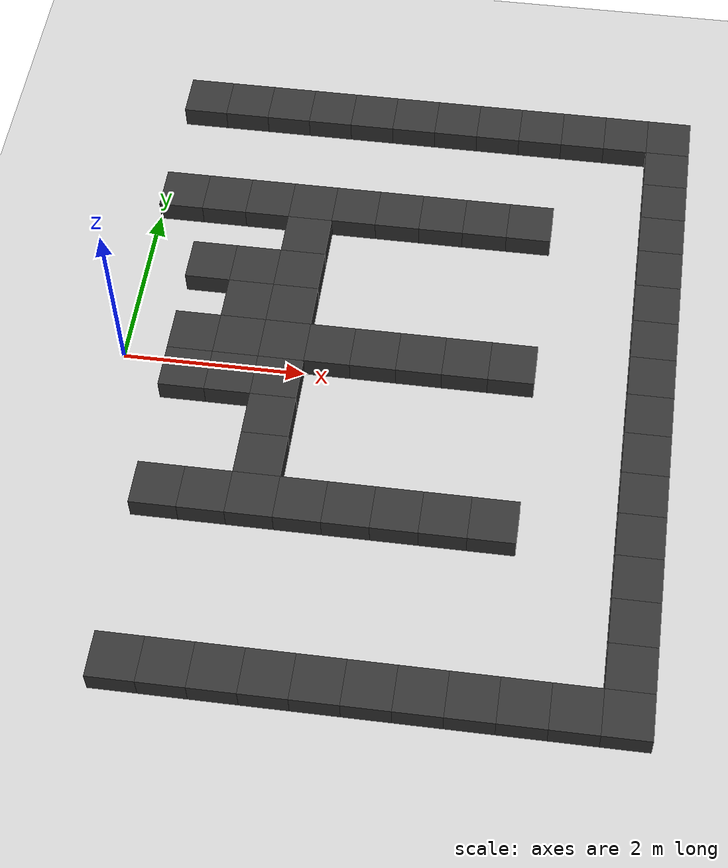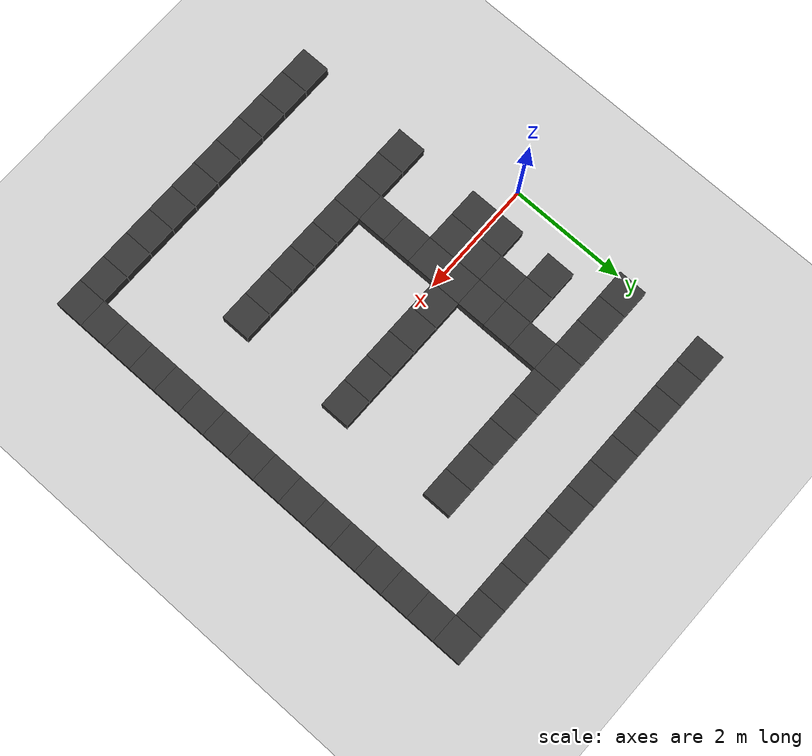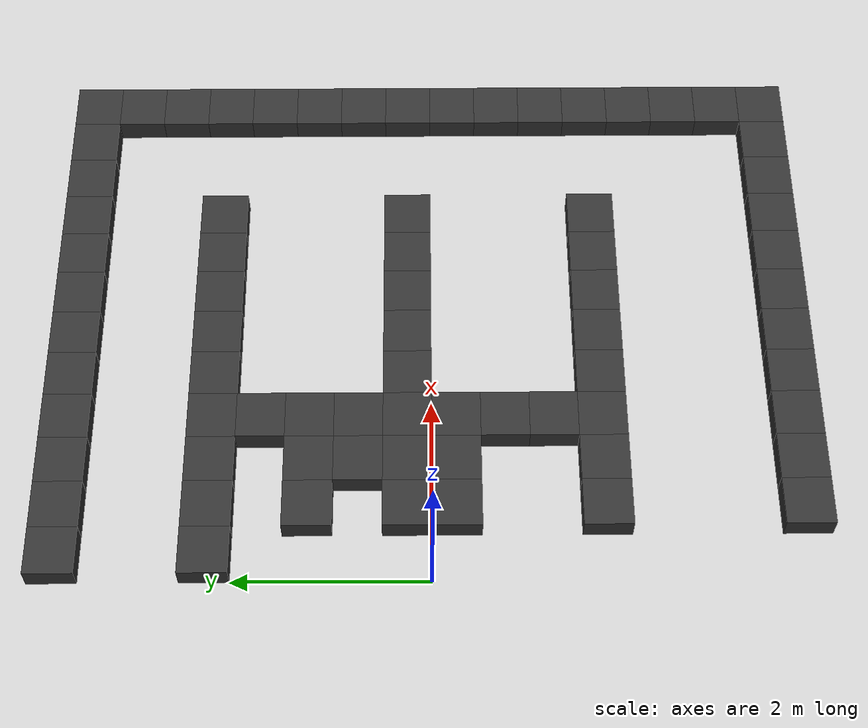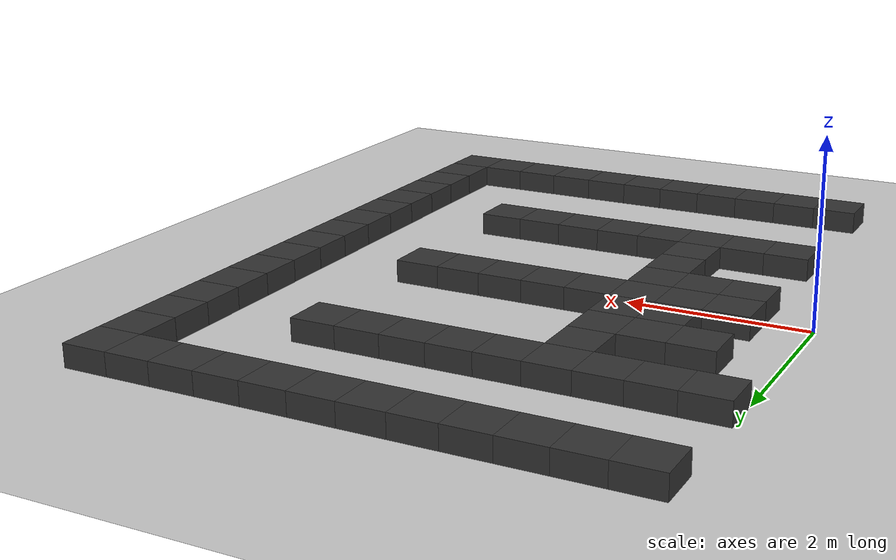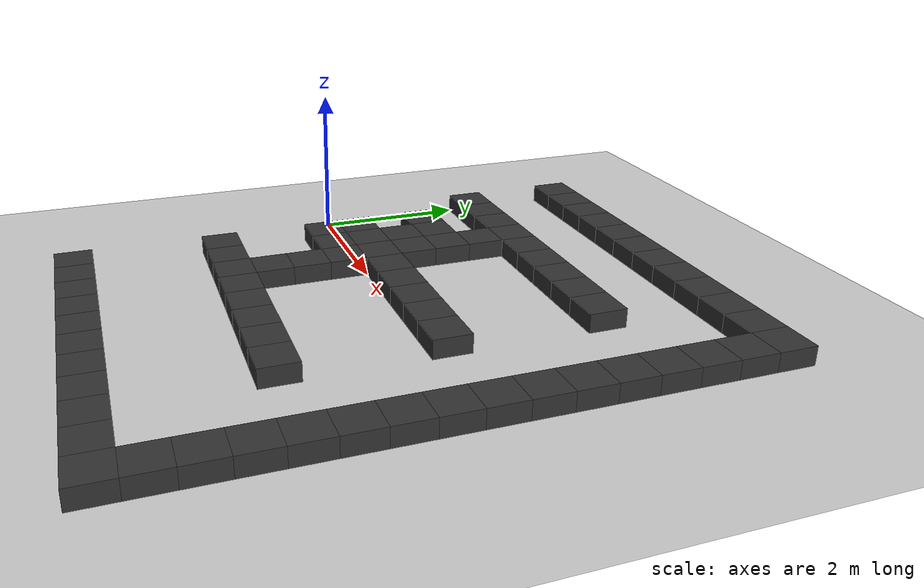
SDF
<sdf version="1.7">
 <world name="default">
  <model name="ground">
   <static>true</static>
   <link name="link">
    <collision name="col">
     <geometry><plane><normal>0 0 1</normal><size>200 200</size></plane></geometry>
    </collision>
    <visual name="vis">
     <geometry><plane><normal>0 0 1</normal><size>200 200</size></plane></geometry>
     <material>
      <ambient>0.25 0.25 0.25 1</ambient>
      <diffuse>0.80 0.80 0.80 1</diffuse>
      <specular>0.05 0.05 0.05 1</specular>
     </material>
    </visual>
   </link>
  </model>
  <model name="w_0_13">
   <static>true</static>
   <pose>0.750 -3.750 0.125 0 0 0</pose>
   <link name="link">
    <collision name="col"><geometry><box><size>0.500 0.500 0.250</size></box></geometry></collision>
    <visual name="vis">
     <geometry><box><size>0.500 0.500 0.250</size></box></geometry>
     <material><ambient>0.2 0.2 0.2 1.0</ambient></material>
    </visual>
   </link>
  </model>
  <model name="w_0_14">
   <static>true</static>
   <pose>1.250 -3.750 0.125 0 0 0</pose>
   <link name="link">
    <collision name="col"><geometry><box><size>0.500 0.500 0.250</size></box></geometry></collision>
    <visual name="vis">
     <geometry><box><size>0.500 0.500 0.250</size></box></geometry>
     <material><ambient>0.2 0.2 0.2 1.0</ambient></material>
    </visual>
   </link>
  </model>
  <model name="w_0_15">
   <static>true</static>
   <pose>1.750 -3.750 0.125 0 0 0</pose>
   <link name="link">
    <collision name="col"><geometry><box><size>0.500 0.500 0.250</size></box></geometry></collision>
    <visual name="vis">
     <geometry><box><size>0.500 0.500 0.250</size></box></geometry>
     <material><ambient>0.2 0.2 0.2 1.0</ambient></material>
    </visual>
   </link>
  </model>
  <model name="w_0_16">
   <static>true</static>
   <pose>2.250 -3.750 0.125 0 0 0</pose>
   <link name="link">
    <collision name="col"><geometry><box><size>0.500 0.500 0.250</size></box></geometry></collision>
    <visual name="vis">
     <geometry><box><size>0.500 0.500 0.250</size></box></geometry>
     <material><ambient>0.2 0.2 0.2 1.0</ambient></material>
    </visual>
   </link>
  </model>
  <model name="w_0_17">
   <static>true</static>
   <pose>2.750 -3.750 0.125 0 0 0</pose>
   <link name="link">
    <collision name="col"><geometry><box><size>0.500 0.500 0.250</size></box></geometry></collision>
    <visual name="vis">
     <geometry><box><size>0.500 0.500 0.250</size></box></geometry>
     <material><ambient>0.2 0.2 0.2 1.0</ambient></material>
    </visual>
   </link>
  </model>
  <model name="w_0_18">
   <static>true</static>
   <pose>3.250 -3.750 0.125 0 0 0</pose>
   <link name="link">
    <collision name="col"><geometry><box><size>0.500 0.500 0.250</size></box></geometry></collision>
    <visual name="vis">
     <geometry><box><size>0.500 0.500 0.250</size></box></geometry>
     <material><ambient>0.2 0.2 0.2 1.0</ambient></material>
    </visual>
   </link>
  </model>
  <model name="w_0_19">
   <static>true</static>
   <pose>3.750 -3.750 0.125 0 0 0</pose>
   <link name="link">
    <collision name="col"><geometry><box><size>0.500 0.500 0.250</size></box></geometry></collision>
    <visual name="vis">
     <geometry><box><size>0.500 0.500 0.250</size></box></geometry>
     <material><ambient>0.2 0.2 0.2 1.0</ambient></material>
    </visual>
   </link>
  </model>
  <model name="w_0_20">
   <static>true</static>
   <pose>4.250 -3.750 0.125 0 0 0</pose>
   <link name="link">
    <collision name="col"><geometry><box><size>0.500 0.500 0.250</size></box></geometry></collision>
    <visual name="vis">
     <geometry><box><size>0.500 0.500 0.250</size></box></geometry>
     <material><ambient>0.2 0.2 0.2 1.0</ambient></material>
    </visual>
   </link>
  </model>
  <model name="w_0_21">
   <static>true</static>
   <pose>4.750 -3.750 0.125 0 0 0</pose>
   <link name="link">
    <collision name="col"><geometry><box><size>0.500 0.500 0.250</size></box></geometry></collision>
    <visual name="vis">
     <geometry><box><size>0.500 0.500 0.250</size></box></geometry>
     <material><ambient>0.2 0.2 0.2 1.0</ambient></material>
    </visual>
   </link>
  </model>
  <model name="w_0_22">
   <static>true</static>
   <pose>5.250 -3.750 0.125 0 0 0</pose>
   <link name="link">
    <collision name="col"><geometry><box><size>0.500 0.500 0.250</size></box></geometry></collision>
    <visual name="vis">
     <geometry><box><size>0.500 0.500 0.250</size></box></geometry>
     <material><ambient>0.2 0.2 0.2 1.0</ambient></material>
    </visual>
   </link>
  </model>
  <model name="w_0_23">
   <static>true</static>
   <pose>5.750 -3.750 0.125 0 0 0</pose>
   <link name="link">
    <collision name="col"><geometry><box><size>0.500 0.500 0.250</size></box></geometry></collision>
    <visual name="vis">
     <geometry><box><size>0.500 0.500 0.250</size></box></geometry>
     <material><ambient>0.2 0.2 0.2 1.0</ambient></material>
    </visual>
   </link>
  </model>
  <model name="w_1_23">
   <static>true</static>
   <pose>5.750 -3.250 0.125 0 0 0</pose>
   <link name="link">
    <collision name="col"><geometry><box><size>0.500 0.500 0.250</size></box></geometry></collision>
    <visual name="vis">
     <geometry><box><size>0.500 0.500 0.250</size></box></geometry>
     <material><ambient>0.2 0.2 0.2 1.0</ambient></material>
    </visual>
   </link>
  </model>
  <model name="w_2_23">
   <static>true</static>
   <pose>5.750 -2.750 0.125 0 0 0</pose>
   <link name="link">
    <collision name="col"><geometry><box><size>0.500 0.500 0.250</size></box></geometry></collision>
    <visual name="vis">
     <geometry><box><size>0.500 0.500 0.250</size></box></geometry>
     <material><ambient>0.2 0.2 0.2 1.0</ambient></material>
    </visual>
   </link>
  </model>
  <model name="w_3_23">
   <static>true</static>
   <pose>5.750 -2.250 0.125 0 0 0</pose>
   <link name="link">
    <collision name="col"><geometry><box><size>0.500 0.500 0.250</size></box></geometry></collision>
    <visual name="vis">
     <geometry><box><size>0.500 0.500 0.250</size></box></geometry>
     <material><ambient>0.2 0.2 0.2 1.0</ambient></material>
    </visual>
   </link>
  </model>
  <model name="w_4_13">
   <static>true</static>
   <pose>0.750 -1.750 0.125 0 0 0</pose>
   <link name="link">
    <collision name="col"><geometry><box><size>0.500 0.500 0.250</size></box></geometry></collision>
    <visual name="vis">
     <geometry><box><size>0.500 0.500 0.250</size></box></geometry>
     <material><ambient>0.2 0.2 0.2 1.0</ambient></material>
    </visual>
   </link>
  </model>
  <model name="w_4_14">
   <static>true</static>
   <pose>1.250 -1.750 0.125 0 0 0</pose>
   <link name="link">
    <collision name="col"><geometry><box><size>0.500 0.500 0.250</size></box></geometry></collision>
    <visual name="vis">
     <geometry><box><size>0.500 0.500 0.250</size></box></geometry>
     <material><ambient>0.2 0.2 0.2 1.0</ambient></material>
    </visual>
   </link>
  </model>
  <model name="w_4_15">
   <static>true</static>
   <pose>1.750 -1.750 0.125 0 0 0</pose>
   <link name="link">
    <collision name="col"><geometry><box><size>0.500 0.500 0.250</size></box></geometry></collision>
    <visual name="vis">
     <geometry><box><size>0.500 0.500 0.250</size></box></geometry>
     <material><ambient>0.2 0.2 0.2 1.0</ambient></material>
    </visual>
   </link>
  </model>
  <model name="w_4_16">
   <static>true</static>
   <pose>2.250 -1.750 0.125 0 0 0</pose>
   <link name="link">
    <collision name="col"><geometry><box><size>0.500 0.500 0.250</size></box></geometry></collision>
    <visual name="vis">
     <geometry><box><size>0.500 0.500 0.250</size></box></geometry>
     <material><ambient>0.2 0.2 0.2 1.0</ambient></material>
    </visual>
   </link>
  </model>
  <model name="w_4_17">
   <static>true</static>
   <pose>2.750 -1.750 0.125 0 0 0</pose>
   <link name="link">
    <collision name="col"><geometry><box><size>0.500 0.500 0.250</size></box></geometry></collision>
    <visual name="vis">
     <geometry><box><size>0.500 0.500 0.250</size></box></geometry>
     <material><ambient>0.2 0.2 0.2 1.0</ambient></material>
    </visual>
   </link>
  </model>
  <model name="w_4_18">
   <static>true</static>
   <pose>3.250 -1.750 0.125 0 0 0</pose>
   <link name="link">
    <collision name="col"><geometry><box><size>0.500 0.500 0.250</size></box></geometry></collision>
    <visual name="vis">
     <geometry><box><size>0.500 0.500 0.250</size></box></geometry>
     <material><ambient>0.2 0.2 0.2 1.0</ambient></material>
    </visual>
   </link>
  </model>
  <model name="w_4_19">
   <static>true</static>
   <pose>3.750 -1.750 0.125 0 0 0</pose>
   <link name="link">
    <collision name="col"><geometry><box><size>0.500 0.500 0.250</size></box></geometry></collision>
    <visual name="vis">
     <geometry><box><size>0.500 0.500 0.250</size></box></geometry>
     <material><ambient>0.2 0.2 0.2 1.0</ambient></material>
    </visual>
   </link>
  </model>
  <model name="w_4_20">
   <static>true</static>
   <pose>4.250 -1.750 0.125 0 0 0</pose>
   <link name="link">
    <collision name="col"><geometry><box><size>0.500 0.500 0.250</size></box></geometry></collision>
    <visual name="vis">
     <geometry><box><size>0.500 0.500 0.250</size></box></geometry>
     <material><ambient>0.2 0.2 0.2 1.0</ambient></material>
    </visual>
   </link>
  </model>
  <model name="w_4_23">
   <static>true</static>
   <pose>5.750 -1.750 0.125 0 0 0</pose>
   <link name="link">
    <collision name="col"><geometry><box><size>0.500 0.500 0.250</size></box></geometry></collision>
    <visual name="vis">
     <geometry><box><size>0.500 0.500 0.250</size></box></geometry>
     <material><ambient>0.2 0.2 0.2 1.0</ambient></material>
    </visual>
   </link>
  </model>
  <model name="w_5_15">
   <static>true</static>
   <pose>1.750 -1.250 0.125 0 0 0</pose>
   <link name="link">
    <collision name="col"><geometry><box><size>0.500 0.500 0.250</size></box></geometry></collision>
    <visual name="vis">
     <geometry><box><size>0.500 0.500 0.250</size></box></geometry>
     <material><ambient>0.2 0.2 0.2 1.0</ambient></material>
    </visual>
   </link>
  </model>
  <model name="w_5_23">
   <static>true</static>
   <pose>5.750 -1.250 0.125 0 0 0</pose>
   <link name="link">
    <collision name="col"><geometry><box><size>0.500 0.500 0.250</size></box></geometry></collision>
    <visual name="vis">
     <geometry><box><size>0.500 0.500 0.250</size></box></geometry>
     <material><ambient>0.2 0.2 0.2 1.0</ambient></material>
    </visual>
   </link>
  </model>
  <model name="w_6_15">
   <static>true</static>
   <pose>1.750 -0.750 0.125 0 0 0</pose>
   <link name="link">
    <collision name="col"><geometry><box><size>0.500 0.500 0.250</size></box></geometry></collision>
    <visual name="vis">
     <geometry><box><size>0.500 0.500 0.250</size></box></geometry>
     <material><ambient>0.2 0.2 0.2 1.0</ambient></material>
    </visual>
   </link>
  </model>
  <model name="w_6_23">
   <static>true</static>
   <pose>5.750 -0.750 0.125 0 0 0</pose>
   <link name="link">
    <collision name="col"><geometry><box><size>0.500 0.500 0.250</size></box></geometry></collision>
    <visual name="vis">
     <geometry><box><size>0.500 0.500 0.250</size></box></geometry>
     <material><ambient>0.2 0.2 0.2 1.0</ambient></material>
    </visual>
   </link>
  </model>
  <model name="w_7_13">
   <static>true</static>
   <pose>0.750 -0.250 0.125 0 0 0</pose>
   <link name="link">
    <collision name="col"><geometry><box><size>0.500 0.500 0.250</size></box></geometry></collision>
    <visual name="vis">
     <geometry><box><size>0.500 0.500 0.250</size></box></geometry>
     <material><ambient>0.2 0.2 0.2 1.0</ambient></material>
    </visual>
   </link>
  </model>
  <model name="w_7_14">
   <static>true</static>
   <pose>1.250 -0.250 0.125 0 0 0</pose>
   <link name="link">
    <collision name="col"><geometry><box><size>0.500 0.500 0.250</size></box></geometry></collision>
    <visual name="vis">
     <geometry><box><size>0.500 0.500 0.250</size></box></geometry>
     <material><ambient>0.2 0.2 0.2 1.0</ambient></material>
    </visual>
   </link>
  </model>
  <model name="w_7_15">
   <static>true</static>
   <pose>1.750 -0.250 0.125 0 0 0</pose>
   <link name="link">
    <collision name="col"><geometry><box><size>0.500 0.500 0.250</size></box></geometry></collision>
    <visual name="vis">
     <geometry><box><size>0.500 0.500 0.250</size></box></geometry>
     <material><ambient>0.2 0.2 0.2 1.0</ambient></material>
    </visual>
   </link>
  </model>
  <model name="w_7_23">
   <static>true</static>
   <pose>5.750 -0.250 0.125 0 0 0</pose>
   <link name="link">
    <collision name="col"><geometry><box><size>0.500 0.500 0.250</size></box></geometry></collision>
    <visual name="vis">
     <geometry><box><size>0.500 0.500 0.250</size></box></geometry>
     <material><ambient>0.2 0.2 0.2 1.0</ambient></material>
    </visual>
   </link>
  </model>
  <model name="w_8_13">
   <static>true</static>
   <pose>0.750 0.250 0.125 0 0 0</pose>
   <link name="link">
    <collision name="col"><geometry><box><size>0.500 0.500 0.250</size></box></geometry></collision>
    <visual name="vis">
     <geometry><box><size>0.500 0.500 0.250</size></box></geometry>
     <material><ambient>0.2 0.2 0.2 1.0</ambient></material>
    </visual>
   </link>
  </model>
  <model name="w_8_14">
   <static>true</static>
   <pose>1.250 0.250 0.125 0 0 0</pose>
   <link name="link">
    <collision name="col"><geometry><box><size>0.500 0.500 0.250</size></box></geometry></collision>
    <visual name="vis">
     <geometry><box><size>0.500 0.500 0.250</size></box></geometry>
     <material><ambient>0.2 0.2 0.2 1.0</ambient></material>
    </visual>
   </link>
  </model>
  <model name="w_8_15">
   <static>true</static>
   <pose>1.750 0.250 0.125 0 0 0</pose>
   <link name="link">
    <collision name="col"><geometry><box><size>0.500 0.500 0.250</size></box></geometry></collision>
    <visual name="vis">
     <geometry><box><size>0.500 0.500 0.250</size></box></geometry>
     <material><ambient>0.2 0.2 0.2 1.0</ambient></material>
    </visual>
   </link>
  </model>
  <model name="w_8_16">
   <static>true</static>
   <pose>2.250 0.250 0.125 0 0 0</pose>
   <link name="link">
    <collision name="col"><geometry><box><size>0.500 0.500 0.250</size></box></geometry></collision>
    <visual name="vis">
     <geometry><box><size>0.500 0.500 0.250</size></box></geometry>
     <material><ambient>0.2 0.2 0.2 1.0</ambient></material>
    </visual>
   </link>
  </model>
  <model name="w_8_17">
   <static>true</static>
   <pose>2.750 0.250 0.125 0 0 0</pose>
   <link name="link">
    <collision name="col"><geometry><box><size>0.500 0.500 0.250</size></box></geometry></collision>
    <visual name="vis">
     <geometry><box><size>0.500 0.500 0.250</size></box></geometry>
     <material><ambient>0.2 0.2 0.2 1.0</ambient></material>
    </visual>
   </link>
  </model>
  <model name="w_8_18">
   <static>true</static>
   <pose>3.250 0.250 0.125 0 0 0</pose>
   <link name="link">
    <collision name="col"><geometry><box><size>0.500 0.500 0.250</size></box></geometry></collision>
    <visual name="vis">
     <geometry><box><size>0.500 0.500 0.250</size></box></geometry>
     <material><ambient>0.2 0.2 0.2 1.0</ambient></material>
    </visual>
   </link>
  </model>
  <model name="w_8_19">
   <static>true</static>
   <pose>3.750 0.250 0.125 0 0 0</pose>
   <link name="link">
    <collision name="col"><geometry><box><size>0.500 0.500 0.250</size></box></geometry></collision>
    <visual name="vis">
     <geometry><box><size>0.500 0.500 0.250</size></box></geometry>
     <material><ambient>0.2 0.2 0.2 1.0</ambient></material>
    </visual>
   </link>
  </model>
  <model name="w_8_20">
   <static>true</static>
   <pose>4.250 0.250 0.125 0 0 0</pose>
   <link name="link">
    <collision name="col"><geometry><box><size>0.500 0.500 0.250</size></box></geometry></collision>
    <visual name="vis">
     <geometry><box><size>0.500 0.500 0.250</size></box></geometry>
     <material><ambient>0.2 0.2 0.2 1.0</ambient></material>
    </visual>
   </link>
  </model>
  <model name="w_8_23">
   <static>true</static>
   <pose>5.750 0.250 0.125 0 0 0</pose>
   <link name="link">
    <collision name="col"><geometry><box><size>0.500 0.500 0.250</size></box></geometry></collision>
    <visual name="vis">
     <geometry><box><size>0.500 0.500 0.250</size></box></geometry>
     <material><ambient>0.2 0.2 0.2 1.0</ambient></material>
    </visual>
   </link>
  </model>
  <model name="w_9_14">
   <static>true</static>
   <pose>1.250 0.750 0.125 0 0 0</pose>
   <link name="link">
    <collision name="col"><geometry><box><size>0.500 0.500 0.250</size></box></geometry></collision>
    <visual name="vis">
     <geometry><box><size>0.500 0.500 0.250</size></box></geometry>
     <material><ambient>0.2 0.2 0.2 1.0</ambient></material>
    </visual>
   </link>
  </model>
  <model name="w_9_15">
   <static>true</static>
   <pose>1.750 0.750 0.125 0 0 0</pose>
   <link name="link">
    <collision name="col"><geometry><box><size>0.500 0.500 0.250</size></box></geometry></collision>
    <visual name="vis">
     <geometry><box><size>0.500 0.500 0.250</size></box></geometry>
     <material><ambient>0.2 0.2 0.2 1.0</ambient></material>
    </visual>
   </link>
  </model>
  <model name="w_9_23">
   <static>true</static>
   <pose>5.750 0.750 0.125 0 0 0</pose>
   <link name="link">
    <collision name="col"><geometry><box><size>0.500 0.500 0.250</size></box></geometry></collision>
    <visual name="vis">
     <geometry><box><size>0.500 0.500 0.250</size></box></geometry>
     <material><ambient>0.2 0.2 0.2 1.0</ambient></material>
    </visual>
   </link>
  </model>
  <model name="w_10_13">
   <static>true</static>
   <pose>0.750 1.250 0.125 0 0 0</pose>
   <link name="link">
    <collision name="col"><geometry><box><size>0.500 0.500 0.250</size></box></geometry></collision>
    <visual name="vis">
     <geometry><box><size>0.500 0.500 0.250</size></box></geometry>
     <material><ambient>0.2 0.2 0.2 1.0</ambient></material>
    </visual>
   </link>
  </model>
  <model name="w_10_14">
   <static>true</static>
   <pose>1.250 1.250 0.125 0 0 0</pose>
   <link name="link">
    <collision name="col"><geometry><box><size>0.500 0.500 0.250</size></box></geometry></collision>
    <visual name="vis">
     <geometry><box><size>0.500 0.500 0.250</size></box></geometry>
     <material><ambient>0.2 0.2 0.2 1.0</ambient></material>
    </visual>
   </link>
  </model>
  <model name="w_10_15">
   <static>true</static>
   <pose>1.750 1.250 0.125 0 0 0</pose>
   <link name="link">
    <collision name="col"><geometry><box><size>0.500 0.500 0.250</size></box></geometry></collision>
    <visual name="vis">
     <geometry><box><size>0.500 0.500 0.250</size></box></geometry>
     <material><ambient>0.2 0.2 0.2 1.0</ambient></material>
    </visual>
   </link>
  </model>
  <model name="w_10_23">
   <static>true</static>
   <pose>5.750 1.250 0.125 0 0 0</pose>
   <link name="link">
    <collision name="col"><geometry><box><size>0.500 0.500 0.250</size></box></geometry></collision>
    <visual name="vis">
     <geometry><box><size>0.500 0.500 0.250</size></box></geometry>
     <material><ambient>0.2 0.2 0.2 1.0</ambient></material>
    </visual>
   </link>
  </model>
  <model name="w_11_15">
   <static>true</static>
   <pose>1.750 1.750 0.125 0 0 0</pose>
   <link name="link">
    <collision name="col"><geometry><box><size>0.500 0.500 0.250</size></box></geometry></collision>
    <visual name="vis">
     <geometry><box><size>0.500 0.500 0.250</size></box></geometry>
     <material><ambient>0.2 0.2 0.2 1.0</ambient></material>
    </visual>
   </link>
  </model>
  <model name="w_11_23">
   <static>true</static>
   <pose>5.750 1.750 0.125 0 0 0</pose>
   <link name="link">
    <collision name="col"><geometry><box><size>0.500 0.500 0.250</size></box></geometry></collision>
    <visual name="vis">
     <geometry><box><size>0.500 0.500 0.250</size></box></geometry>
     <material><ambient>0.2 0.2 0.2 1.0</ambient></material>
    </visual>
   </link>
  </model>
  <model name="w_12_12">
   <static>true</static>
   <pose>0.250 2.250 0.125 0 0 0</pose>
   <link name="link">
    <collision name="col"><geometry><box><size>0.500 0.500 0.250</size></box></geometry></collision>
    <visual name="vis">
     <geometry><box><size>0.500 0.500 0.250</size></box></geometry>
     <material><ambient>0.2 0.2 0.2 1.0</ambient></material>
    </visual>
   </link>
  </model>
  <model name="w_12_13">
   <static>true</static>
   <pose>0.750 2.250 0.125 0 0 0</pose>
   <link name="link">
    <collision name="col"><geometry><box><size>0.500 0.500 0.250</size></box></geometry></collision>
    <visual name="vis">
     <geometry><box><size>0.500 0.500 0.250</size></box></geometry>
     <material><ambient>0.2 0.2 0.2 1.0</ambient></material>
    </visual>
   </link>
  </model>
  <model name="w_12_14">
   <static>true</static>
   <pose>1.250 2.250 0.125 0 0 0</pose>
   <link name="link">
    <collision name="col"><geometry><box><size>0.500 0.500 0.250</size></box></geometry></collision>
    <visual name="vis">
     <geometry><box><size>0.500 0.500 0.250</size></box></geometry>
     <material><ambient>0.2 0.2 0.2 1.0</ambient></material>
    </visual>
   </link>
  </model>
  <model name="w_12_15">
   <static>true</static>
   <pose>1.750 2.250 0.125 0 0 0</pose>
   <link name="link">
    <collision name="col"><geometry><box><size>0.500 0.500 0.250</size></box></geometry></collision>
    <visual name="vis">
     <geometry><box><size>0.500 0.500 0.250</size></box></geometry>
     <material><ambient>0.2 0.2 0.2 1.0</ambient></material>
    </visual>
   </link>
  </model>
  <model name="w_12_16">
   <static>true</static>
   <pose>2.250 2.250 0.125 0 0 0</pose>
   <link name="link">
    <collision name="col"><geometry><box><size>0.500 0.500 0.250</size></box></geometry></collision>
    <visual name="vis">
     <geometry><box><size>0.500 0.500 0.250</size></box></geometry>
     <material><ambient>0.2 0.2 0.2 1.0</ambient></material>
    </visual>
   </link>
  </model>
  <model name="w_12_17">
   <static>true</static>
   <pose>2.750 2.250 0.125 0 0 0</pose>
   <link name="link">
    <collision name="col"><geometry><box><size>0.500 0.500 0.250</size></box></geometry></collision>
    <visual name="vis">
     <geometry><box><size>0.500 0.500 0.250</size></box></geometry>
     <material><ambient>0.2 0.2 0.2 1.0</ambient></material>
    </visual>
   </link>
  </model>
  <model name="w_12_18">
   <static>true</static>
   <pose>3.250 2.250 0.125 0 0 0</pose>
   <link name="link">
    <collision name="col"><geometry><box><size>0.500 0.500 0.250</size></box></geometry></collision>
    <visual name="vis">
     <geometry><box><size>0.500 0.500 0.250</size></box></geometry>
     <material><ambient>0.2 0.2 0.2 1.0</ambient></material>
    </visual>
   </link>
  </model>
  <model name="w_12_19">
   <static>true</static>
   <pose>3.750 2.250 0.125 0 0 0</pose>
   <link name="link">
    <collision name="col"><geometry><box><size>0.500 0.500 0.250</size></box></geometry></collision>
    <visual name="vis">
     <geometry><box><size>0.500 0.500 0.250</size></box></geometry>
     <material><ambient>0.2 0.2 0.2 1.0</ambient></material>
    </visual>
   </link>
  </model>
  <model name="w_12_20">
   <static>true</static>
   <pose>4.250 2.250 0.125 0 0 0</pose>
   <link name="link">
    <collision name="col"><geometry><box><size>0.500 0.500 0.250</size></box></geometry></collision>
    <visual name="vis">
     <geometry><box><size>0.500 0.500 0.250</size></box></geometry>
     <material><ambient>0.2 0.2 0.2 1.0</ambient></material>
    </visual>
   </link>
  </model>
  <model name="w_12_23">
   <static>true</static>
   <pose>5.750 2.250 0.125 0 0 0</pose>
   <link name="link">
    <collision name="col"><geometry><box><size>0.500 0.500 0.250</size></box></geometry></collision>
    <visual name="vis">
     <geometry><box><size>0.500 0.500 0.250</size></box></geometry>
     <material><ambient>0.2 0.2 0.2 1.0</ambient></material>
    </visual>
   </link>
  </model>
  <model name="w_13_23">
   <static>true</static>
   <pose>5.750 2.750 0.125 0 0 0</pose>
   <link name="link">
    <collision name="col"><geometry><box><size>0.500 0.500 0.250</size></box></geometry></collision>
    <visual name="vis">
     <geometry><box><size>0.500 0.500 0.250</size></box></geometry>
     <material><ambient>0.2 0.2 0.2 1.0</ambient></material>
    </visual>
   </link>
  </model>
  <model name="w_14_23">
   <static>true</static>
   <pose>5.750 3.250 0.125 0 0 0</pose>
   <link name="link">
    <collision name="col"><geometry><box><size>0.500 0.500 0.250</size></box></geometry></collision>
    <visual name="vis">
     <geometry><box><size>0.500 0.500 0.250</size></box></geometry>
     <material><ambient>0.2 0.2 0.2 1.0</ambient></material>
    </visual>
   </link>
  </model>
  <model name="w_15_12">
   <static>true</static>
   <pose>0.250 3.750 0.125 0 0 0</pose>
   <link name="link">
    <collision name="col"><geometry><box><size>0.500 0.500 0.250</size></box></geometry></collision>
    <visual name="vis">
     <geometry><box><size>0.500 0.500 0.250</size></box></geometry>
     <material><ambient>0.2 0.2 0.2 1.0</ambient></material>
    </visual>
   </link>
  </model>
  <model name="w_15_13">
   <static>true</static>
   <pose>0.750 3.750 0.125 0 0 0</pose>
   <link name="link">
    <collision name="col"><geometry><box><size>0.500 0.500 0.250</size></box></geometry></collision>
    <visual name="vis">
     <geometry><box><size>0.500 0.500 0.250</size></box></geometry>
     <material><ambient>0.2 0.2 0.2 1.0</ambient></material>
    </visual>
   </link>
  </model>
  <model name="w_15_14">
   <static>true</static>
   <pose>1.250 3.750 0.125 0 0 0</pose>
   <link name="link">
    <collision name="col"><geometry><box><size>0.500 0.500 0.250</size></box></geometry></collision>
    <visual name="vis">
     <geometry><box><size>0.500 0.500 0.250</size></box></geometry>
     <material><ambient>0.2 0.2 0.2 1.0</ambient></material>
    </visual>
   </link>
  </model>
  <model name="w_15_15">
   <static>true</static>
   <pose>1.750 3.750 0.125 0 0 0</pose>
   <link name="link">
    <collision name="col"><geometry><box><size>0.500 0.500 0.250</size></box></geometry></collision>
    <visual name="vis">
     <geometry><box><size>0.500 0.500 0.250</size></box></geometry>
     <material><ambient>0.2 0.2 0.2 1.0</ambient></material>
    </visual>
   </link>
  </model>
  <model name="w_15_16">
   <static>true</static>
   <pose>2.250 3.750 0.125 0 0 0</pose>
   <link name="link">
    <collision name="col"><geometry><box><size>0.500 0.500 0.250</size></box></geometry></collision>
    <visual name="vis">
     <geometry><box><size>0.500 0.500 0.250</size></box></geometry>
     <material><ambient>0.2 0.2 0.2 1.0</ambient></material>
    </visual>
   </link>
  </model>
  <model name="w_15_17">
   <static>true</static>
   <pose>2.750 3.750 0.125 0 0 0</pose>
   <link name="link">
    <collision name="col"><geometry><box><size>0.500 0.500 0.250</size></box></geometry></collision>
    <visual name="vis">
     <geometry><box><size>0.500 0.500 0.250</size></box></geometry>
     <material><ambient>0.2 0.2 0.2 1.0</ambient></material>
    </visual>
   </link>
  </model>
  <model name="w_15_18">
   <static>true</static>
   <pose>3.250 3.750 0.125 0 0 0</pose>
   <link name="link">
    <collision name="col"><geometry><box><size>0.500 0.500 0.250</size></box></geometry></collision>
    <visual name="vis">
     <geometry><box><size>0.500 0.500 0.250</size></box></geometry>
     <material><ambient>0.2 0.2 0.2 1.0</ambient></material>
    </visual>
   </link>
  </model>
  <model name="w_15_19">
   <static>true</static>
   <pose>3.750 3.750 0.125 0 0 0</pose>
   <link name="link">
    <collision name="col"><geometry><box><size>0.500 0.500 0.250</size></box></geometry></collision>
    <visual name="vis">
     <geometry><box><size>0.500 0.500 0.250</size></box></geometry>
     <material><ambient>0.2 0.2 0.2 1.0</ambient></material>
    </visual>
   </link>
  </model>
  <model name="w_15_20">
   <static>true</static>
   <pose>4.250 3.750 0.125 0 0 0</pose>
   <link name="link">
    <collision name="col"><geometry><box><size>0.500 0.500 0.250</size></box></geometry></collision>
    <visual name="vis">
     <geometry><box><size>0.500 0.500 0.250</size></box></geometry>
     <material><ambient>0.2 0.2 0.2 1.0</ambient></material>
    </visual>
   </link>
  </model>
  <model name="w_15_21">
   <static>true</static>
   <pose>4.750 3.750 0.125 0 0 0</pose>
   <link name="link">
    <collision name="col"><geometry><box><size>0.500 0.500 0.250</size></box></geometry></collision>
    <visual name="vis">
     <geometry><box><size>0.500 0.500 0.250</size></box></geometry>
     <material><ambient>0.2 0.2 0.2 1.0</ambient></material>
    </visual>
   </link>
  </model>
  <model name="w_15_22">
   <static>true</static>
   <pose>5.250 3.750 0.125 0 0 0</pose>
   <link name="link">
    <collision name="col"><geometry><box><size>0.500 0.500 0.250</size></box></geometry></collision>
    <visual name="vis">
     <geometry><box><size>0.500 0.500 0.250</size></box></geometry>
     <material><ambient>0.2 0.2 0.2 1.0</ambient></material>
    </visual>
   </link>
  </model>
  <model name="w_15_23">
   <static>true</static>
   <pose>5.750 3.750 0.125 0 0 0</pose>
   <link name="link">
    <collision name="col"><geometry><box><size>0.500 0.500 0.250</size></box></geometry></collision>
    <visual name="vis">
     <geometry><box><size>0.500 0.500 0.250</size></box></geometry>
     <material><ambient>0.2 0.2 0.2 1.0</ambient></material>
    </visual>
   </link>
  </model>
 </world>
</sdf>
